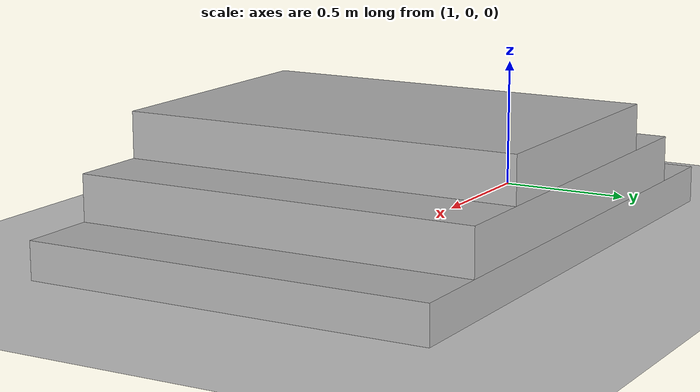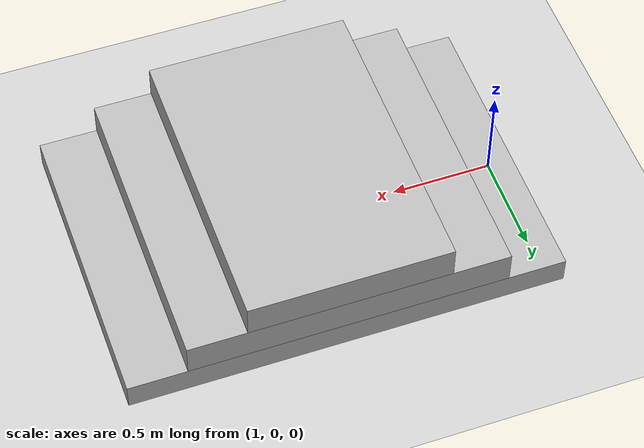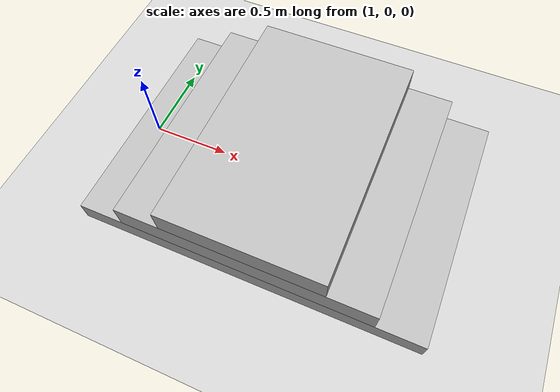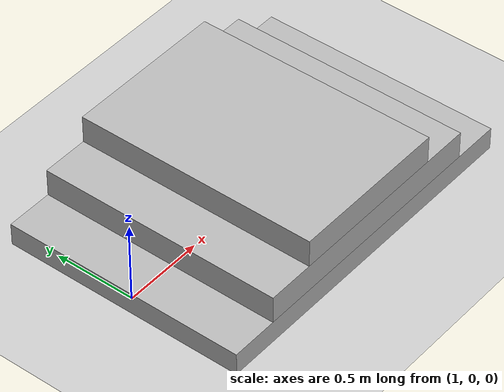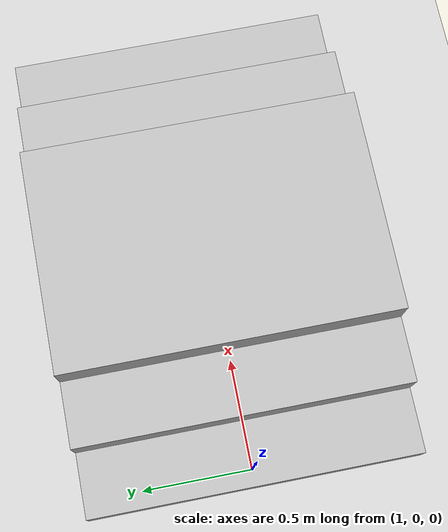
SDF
<?xml version="1.0" ?>
<sdf version="1.0">
  <world name="default">
    <include>
      <uri>model://ground_plane</uri>
    </include>
    <include>
      <uri>model://sun</uri>
    </include>
    <include>
      <uri>model://gazebo_worlds/models/lab_stairs</uri>
    </include>
    <physics type="ode">
      <gravity>0 0 -9.81</gravity>
    </physics>
  </world>
</sdf>

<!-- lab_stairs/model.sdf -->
<sdf version="1.4">
  <model name="lab_stairs">
    <pose>1 0 0.05 0 0 0</pose>
    <static>true</static>

    <link name="platform_a1">
      <visual name="platform_a1_visual">
        <pose>1 0 0 0 0 0</pose>
        <geometry>
          <box>
            <size>2.16 1.5 0.17</size>
          </box>
        </geometry>
      </visual>
      <collision name="platform_a1_collision">
        <pose>1 0 0 0 0 0</pose>
        <geometry>
          <box>
            <size>2.16 1.5 0.17</size>
          </box>
        </geometry>
      </collision>
    </link>

    <link name="platform_a2">
      <visual name="platform_a2_visual">
        <pose>1 0 0.17 0 0 0</pose>
        <geometry>
          <box>
            <size>1.58 1.5 0.17</size>
          </box>
        </geometry>
      </visual>
      <collision name="platform_a2_collision">
        <pose>1 0 0.17 0 0 0</pose>
        <geometry>
          <box>
            <size>1.58 1.5 0.17</size>
          </box>
        </geometry>
      </collision>
    </link>

    <link name="platform_a3">
      <visual name="platform_a3_visual">
        <pose>1 0 0.34 0 0 0</pose>
        <geometry>
          <box>
            <size>1 1.5 0.17</size>
          </box>
        </geometry>
      </visual>
      <collision name="platform_a3_collision">
        <pose>1 0 0.34 0 0 0</pose>
        <geometry>
          <box>
            <size>1 1.5 0.17</size>
          </box>
        </geometry>
      </collision>
    </link>

  </model>
</sdf>
